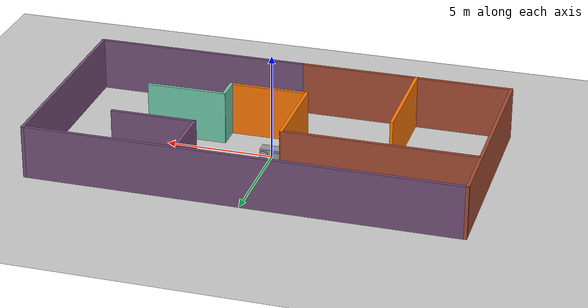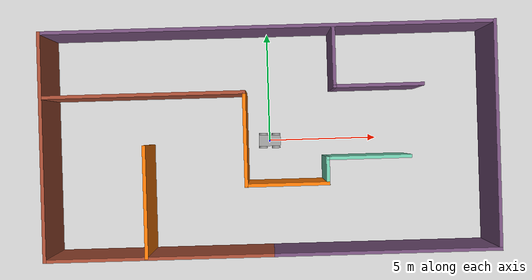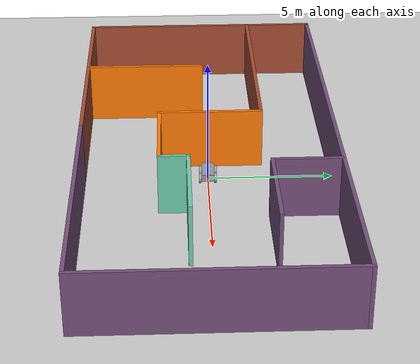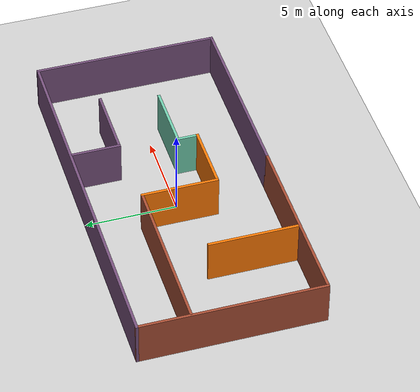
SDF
<sdf version="1.6">
 <world name="default">
  <model name="ground_plane">
   <static>1</static>
   <link name="link">
    <collision name="collision">
     <geometry><plane><normal>0 0 1</normal><size>100 100</size></plane></geometry>
     <surface>
      <contact><collide_bitmask>65535</collide_bitmask></contact>
      <friction><ode><mu>100</mu><mu2>50</mu2></ode></friction>
     </surface>
    </collision>
    <visual name="visual">
     <cast_shadows>0</cast_shadows>
     <geometry><plane><normal>0 0 1</normal><size>100 100</size></plane></geometry>
     <material>
      <script><uri>file://media/materials/scripts/gazebo.material</uri><name>Gazebo/Grey</name></script>
     </material>
    </visual>
   </link>
  </model>
  <model name="RoboModel">
   <link name="link_0">
    <inertial>
     <mass>1</mass>
     <inertia>
      <ixx>0.166667</ixx>
      <ixy>0</ixy>
      <ixz>0</ixz>
      <iyy>0.166667</iyy>
      <iyz>0</iyz>
      <izz>0.166667</izz>
     </inertia>
    </inertial>
    <pose>0 0.001523 -0.04 0 -0 0</pose>
    <visual name="visual">
     <geometry><box><size>1 0.5 0.3</size></box></geometry>
     <material>
      <lighting>1</lighting>
      <script><uri>file://media/materials/scripts/gazebo.material</uri><name>Gazebo/Grey</name></script>
      <shader type="vertex"><normal_map>__default__</normal_map></shader>
      <ambient>0.3 0.3 0.3 1</ambient>
      <diffuse>0.7 0.7 0.7 1</diffuse>
      <specular>0.01 0.01 0.01 1</specular>
      <emissive>0 0 0 1</emissive>
     </material>
    </visual>
    <collision name="collision">
     <geometry><box><size>1 0.5 0.3</size></box></geometry>
     <surface>
      <friction>
       <ode><mu>1</mu><mu2>1</mu2><fdir1>0 0 0</fdir1><slip1>0</slip1><slip2>0</slip2></ode>
       <torsional>
        <coefficient>1</coefficient>
        <patch_radius>0</patch_radius>
        <surface_radius>0</surface_radius>
        <use_patch_radius>1</use_patch_radius>
        <ode><slip>0</slip></ode>
       </torsional>
      </friction>
      <bounce><restitution_coefficient>0</restitution_coefficient><threshold>1e+06</threshold></bounce>
      <contact>
       <collide_without_contact>0</collide_without_contact>
       <collide_without_contact_bitmask>1</collide_without_contact_bitmask>
       <collide_bitmask>1</collide_bitmask>
       <ode>
        <soft_cfm>0</soft_cfm>
        <soft_erp>0.2</soft_erp>
        <kp>1e+13</kp>
        <kd>1</kd>
        <max_vel>0.01</max_vel>
        <min_depth>0</min_depth>
       </ode>
       <bullet>
        <split_impulse>1</split_impulse>
        <split_impulse_penetration_threshold>-0.01</split_impulse_penetration_threshold>
        <soft_cfm>0</soft_cfm>
        <soft_erp>0.2</soft_erp>
        <kp>1e+13</kp>
        <kd>1</kd>
       </bullet>
      </contact>
     </surface>
    </collision>
   </link>
   <link name="link_1_clone_0">
    <inertial>
     <mass>1</mass>
     <inertia><ixx>0.145833</ixx><ixy>0</ixy><ixz>0</ixz><iyy>0.145833</iyy><iyz>0</iyz><izz>0.125</izz></inertia>
    </inertial>
    <pose>0.3 -0.298496 -0.14 1.5707 -0 0</pose>
    <visual name="visual">
     <geometry><cylinder><radius>0.2</radius><length>0.1</length></cylinder></geometry>
     <material>
      <lighting>1</lighting>
      <script><uri>file://media/materials/scripts/gazebo.material</uri><name>Gazebo/Grey</name></script>
      <shader type="vertex"><normal_map>__default__</normal_map></shader>
      <ambient>0.3 0.3 0.3 1</ambient>
      <diffuse>0.7 0.7 0.7 1</diffuse>
      <specular>0.01 0.01 0.01 1</specular>
      <emissive>0 0 0 1</emissive>
     </material>
    </visual>
    <collision name="collision">
     <geometry><cylinder><radius>0.2</radius><length>0.1</length></cylinder></geometry>
     <surface>
      <friction>
       <ode><mu>1</mu><mu2>1</mu2><fdir1>0 0 0</fdir1><slip1>0</slip1><slip2>0</slip2></ode>
       <torsional>
        <coefficient>1</coefficient>
        <patch_radius>0</patch_radius>
        <surface_radius>0</surface_radius>
        <use_patch_radius>1</use_patch_radius>
        <ode><slip>0</slip></ode>
       </torsional>
      </friction>
      <bounce><restitution_coefficient>0</restitution_coefficient><threshold>1e+06</threshold></bounce>
      <contact>
       <collide_without_contact>0</collide_without_contact>
       <collide_without_contact_bitmask>1</collide_without_contact_bitmask>
       <collide_bitmask>1</collide_bitmask>
       <ode>
        <soft_cfm>0</soft_cfm>
        <soft_erp>0.2</soft_erp>
        <kp>1e+13</kp>
        <kd>1</kd>
        <max_vel>0.01</max_vel>
        <min_depth>0</min_depth>
       </ode>
       <bullet>
        <split_impulse>1</split_impulse>
        <split_impulse_penetration_threshold>-0.01</split_impulse_penetration_threshold>
        <soft_cfm>0</soft_cfm>
        <soft_erp>0.2</soft_erp>
        <kp>1e+13</kp>
        <kd>1</kd>
       </bullet>
      </contact>
     </surface>
    </collision>
   </link>
   <link name="link_1_clone_1">
    <inertial>
     <mass>1</mass>
     <inertia><ixx>0.145833</ixx><ixy>0</ixy><ixz>0</ixz><iyy>0.145833</iyy><iyz>0</iyz><izz>0.125</izz></inertia>
    </inertial>
    <pose>-0.3 -0.298496 -0.14 1.5707 -0 0</pose>
    <visual name="visual">
     <geometry><cylinder><radius>0.2</radius><length>0.1</length></cylinder></geometry>
     <material>
      <lighting>1</lighting>
      <script><uri>file://media/materials/scripts/gazebo.material</uri><name>Gazebo/Grey</name></script>
      <shader type="vertex"><normal_map>__default__</normal_map></shader>
      <ambient>0.3 0.3 0.3 1</ambient>
      <diffuse>0.7 0.7 0.7 1</diffuse>
      <specular>0.01 0.01 0.01 1</specular>
      <emissive>0 0 0 1</emissive>
     </material>
    </visual>
    <collision name="collision">
     <geometry><cylinder><radius>0.2</radius><length>0.1</length></cylinder></geometry>
     <surface>
      <friction>
       <ode><mu>1</mu><mu2>1</mu2><fdir1>0 0 0</fdir1><slip1>0</slip1><slip2>0</slip2></ode>
       <torsional>
        <coefficient>1</coefficient>
        <patch_radius>0</patch_radius>
        <surface_radius>0</surface_radius>
        <use_patch_radius>1</use_patch_radius>
        <ode><slip>0</slip></ode>
       </torsional>
      </friction>
      <bounce><restitution_coefficient>0</restitution_coefficient><threshold>1e+06</threshold></bounce>
      <contact>
       <collide_without_contact>0</collide_without_contact>
       <collide_without_contact_bitmask>1</collide_without_contact_bitmask>
       <collide_bitmask>1</collide_bitmask>
       <ode>
        <soft_cfm>0</soft_cfm>
        <soft_erp>0.2</soft_erp>
        <kp>1e+13</kp>
        <kd>1</kd>
        <max_vel>0.01</max_vel>
        <min_depth>0</min_depth>
       </ode>
       <bullet>
        <split_impulse>1</split_impulse>
        <split_impulse_penetration_threshold>-0.01</split_impulse_penetration_threshold>
        <soft_cfm>0</soft_cfm>
        <soft_erp>0.2</soft_erp>
        <kp>1e+13</kp>
        <kd>1</kd>
       </bullet>
      </contact>
     </surface>
    </collision>
   </link>
   <link name="link_1_clone_1_clone">
    <inertial>
     <mass>1</mass>
     <inertia><ixx>0.145833</ixx><ixy>0</ixy><ixz>0</ixz><iyy>0.145833</iyy><iyz>0</iyz><izz>0.125</izz></inertia>
    </inertial>
    <pose>0.3 0.293927 -0.14 1.5707 -0 0</pose>
    <visual name="visual">
     <geometry><cylinder><radius>0.2</radius><length>0.1</length></cylinder></geometry>
     <material>
      <lighting>1</lighting>
      <script><uri>file://media/materials/scripts/gazebo.material</uri><name>Gazebo/Grey</name></script>
      <shader type="vertex"><normal_map>__default__</normal_map></shader>
      <ambient>0.3 0.3 0.3 1</ambient>
      <diffuse>0.7 0.7 0.7 1</diffuse>
      <specular>0.01 0.01 0.01 1</specular>
      <emissive>0 0 0 1</emissive>
     </material>
    </visual>
    <collision name="collision">
     <geometry><cylinder><radius>0.2</radius><length>0.1</length></cylinder></geometry>
     <surface>
      <friction>
       <ode><mu>1</mu><mu2>1</mu2><fdir1>0 0 0</fdir1><slip1>0</slip1><slip2>0</slip2></ode>
       <torsional>
        <coefficient>1</coefficient>
        <patch_radius>0</patch_radius>
        <surface_radius>0</surface_radius>
        <use_patch_radius>1</use_patch_radius>
        <ode><slip>0</slip></ode>
       </torsional>
      </friction>
      <bounce><restitution_coefficient>0</restitution_coefficient><threshold>1e+06</threshold></bounce>
      <contact>
       <collide_without_contact>0</collide_without_contact>
       <collide_without_contact_bitmask>1</collide_without_contact_bitmask>
       <collide_bitmask>1</collide_bitmask>
       <ode>
        <soft_cfm>0</soft_cfm>
        <soft_erp>0.2</soft_erp>
        <kp>1e+13</kp>
        <kd>1</kd>
        <max_vel>0.01</max_vel>
        <min_depth>0</min_depth>
       </ode>
       <bullet>
        <split_impulse>1</split_impulse>
        <split_impulse_penetration_threshold>-0.01</split_impulse_penetration_threshold>
        <soft_cfm>0</soft_cfm>
        <soft_erp>0.2</soft_erp>
        <kp>1e+13</kp>
        <kd>1</kd>
       </bullet>
      </contact>
     </surface>
    </collision>
   </link>
   <link name="link_1_clone_1_clone_0">
    <inertial>
     <mass>1</mass>
     <inertia><ixx>0.145833</ixx><ixy>0</ixy><ixz>0</ixz><iyy>0.145833</iyy><iyz>0</iyz><izz>0.125</izz></inertia>
    </inertial>
    <pose>-0.3 0.301542 -0.14 1.5707 -0 0</pose>
    <visual name="visual">
     <geometry><cylinder><radius>0.2</radius><length>0.1</length></cylinder></geometry>
     <material>
      <lighting>1</lighting>
      <script><uri>file://media/materials/scripts/gazebo.material</uri><name>Gazebo/Grey</name></script>
      <shader type="vertex"><normal_map>__default__</normal_map></shader>
      <ambient>0.3 0.3 0.3 1</ambient>
      <diffuse>0.7 0.7 0.7 1</diffuse>
      <specular>0.01 0.01 0.01 1</specular>
      <emissive>0 0 0 1</emissive>
     </material>
    </visual>
    <collision name="collision">
     <geometry><cylinder><radius>0.2</radius><length>0.1</length></cylinder></geometry>
     <surface>
      <friction>
       <ode><mu>1</mu><mu2>1</mu2><fdir1>0 0 0</fdir1><slip1>0</slip1><slip2>0</slip2></ode>
       <torsional>
        <coefficient>1</coefficient>
        <patch_radius>0</patch_radius>
        <surface_radius>0</surface_radius>
        <use_patch_radius>1</use_patch_radius>
        <ode><slip>0</slip></ode>
       </torsional>
      </friction>
      <bounce><restitution_coefficient>0</restitution_coefficient><threshold>1e+06</threshold></bounce>
      <contact>
       <collide_without_contact>0</collide_without_contact>
       <collide_without_contact_bitmask>1</collide_without_contact_bitmask>
       <collide_bitmask>1</collide_bitmask>
       <ode>
        <soft_cfm>0</soft_cfm>
        <soft_erp>0.2</soft_erp>
        <kp>1e+13</kp>
        <kd>1</kd>
        <max_vel>0.01</max_vel>
        <min_depth>0</min_depth>
       </ode>
       <bullet>
        <split_impulse>1</split_impulse>
        <split_impulse_penetration_threshold>-0.01</split_impulse_penetration_threshold>
        <soft_cfm>0</soft_cfm>
        <soft_erp>0.2</soft_erp>
        <kp>1e+13</kp>
        <kd>1</kd>
       </bullet>
      </contact>
     </surface>
    </collision>
   </link>
   <joint name="link_0_JOINT_1" type="revolute">
    <parent>link_0</parent>
    <child>link_1_clone_0</child>
    <axis>
     <xyz>0 0 1</xyz>
     <use_parent_model_frame>0</use_parent_model_frame>
     <limit>
      <lower>-1.79769e+308</lower>
      <upper>1.79769e+308</upper>
      <effort>-1</effort>
      <velocity>-1</velocity>
     </limit>
     <dynamics>
      <spring_reference>0</spring_reference>
      <spring_stiffness>0</spring_stiffness>
      <damping>0</damping>
     </dynamics>
    </axis>
    <physics>
     <ode><limit><cfm>0</cfm><erp>0.2</erp></limit><suspension><cfm>0</cfm><erp>0.2</erp></suspension></ode>
    </physics>
   </joint>
   <joint name="link_0_JOINT_4" type="revolute">
    <parent>link_0</parent>
    <child>link_1_clone_1</child>
    <axis>
     <xyz>0 0 1</xyz>
     <use_parent_model_frame>0</use_parent_model_frame>
     <limit>
      <lower>-1.79769e+308</lower>
      <upper>1.79769e+308</upper>
      <effort>-1</effort>
      <velocity>-1</velocity>
     </limit>
     <dynamics>
      <spring_reference>0</spring_reference>
      <spring_stiffness>0</spring_stiffness>
      <damping>0</damping>
     </dynamics>
    </axis>
    <physics>
     <ode><limit><cfm>0</cfm><erp>0.2</erp></limit><suspension><cfm>0</cfm><erp>0.2</erp></suspension></ode>
    </physics>
   </joint>
   <joint name="link_0_JOINT_5" type="revolute">
    <parent>link_0</parent>
    <child>link_1_clone_1_clone</child>
    <axis>
     <xyz>0 0 1</xyz>
     <use_parent_model_frame>0</use_parent_model_frame>
     <limit>
      <lower>-1.79769e+308</lower>
      <upper>1.79769e+308</upper>
      <effort>-1</effort>
      <velocity>-1</velocity>
     </limit>
     <dynamics>
      <spring_reference>0</spring_reference>
      <spring_stiffness>0</spring_stiffness>
      <damping>0</damping>
     </dynamics>
    </axis>
    <physics>
     <ode><limit><cfm>0</cfm><erp>0.2</erp></limit><suspension><cfm>0</cfm><erp>0.2</erp></suspension></ode>
    </physics>
   </joint>
   <joint name="link_0_JOINT_6" type="revolute">
    <parent>link_0</parent>
    <child>link_1_clone_1_clone_0</child>
    <axis>
     <xyz>0 0 1</xyz>
     <use_parent_model_frame>0</use_parent_model_frame>
     <limit>
      <lower>-1.79769e+308</lower>
      <upper>1.79769e+308</upper>
      <effort>-1</effort>
      <velocity>-1</velocity>
     </limit>
     <dynamics>
      <spring_reference>0</spring_reference>
      <spring_stiffness>0</spring_stiffness>
      <damping>0</damping>
     </dynamics>
    </axis>
    <physics>
     <ode><limit><cfm>0</cfm><erp>0.2</erp></limit><suspension><cfm>0</cfm><erp>0.2</erp></suspension></ode>
    </physics>
   </joint>
   <static>0</static>
   <pose>0.004395 -0.004647 0.340005 1e-06 -0 -0.019747</pose>
  </model>
  <model name="Environment">
   <link name="Wall_10">
    <collision name="Wall_10_Collision">
     <geometry><box><size>4.25 0.15 2.5</size></box></geometry>
     <pose>0 0 1.25 0 -0 0</pose>
    </collision>
    <visual name="Wall_10_Visual">
     <pose>0 0 1.25 0 -0 0</pose>
     <geometry><box><size>4.25 0.15 2.5</size></box></geometry>
     <material>
      <script><uri>file://media/materials/scripts/gazebo.material</uri><name>Gazebo/Grey</name></script>
      <ambient>0.996078 0.47451 0.0196078 1</ambient>
     </material>
     <meta><layer>0</layer></meta>
    </visual>
    <pose>-1.07623 0.124176 0 0 -0 -1.5708</pose>
   </link>
   <link name="Wall_11">
    <collision name="Wall_11_Collision">
     <geometry><box><size>3.75 0.15 2.5</size></box></geometry>
     <pose>0 0 1.25 0 -0 0</pose>
    </collision>
    <visual name="Wall_11_Visual">
     <pose>0 0 1.25 0 -0 0</pose>
     <geometry><box><size>3.75 0.15 2.5</size></box></geometry>
     <material>
      <script><uri>file://media/materials/scripts/gazebo.material</uri><name>Gazebo/Grey</name></script>
      <ambient>0.996078 0.47451 0.0196078 1</ambient>
     </material>
     <meta><layer>0</layer></meta>
    </visual>
    <pose>0.723769 -1.92582 0 0 -0 0</pose>
   </link>
   <link name="Wall_12">
    <collision name="Wall_12_Collision">
     <geometry><box><size>1.25 0.15 2.5</size></box></geometry>
     <pose>0 0 1.25 0 -0 0</pose>
    </collision>
    <visual name="Wall_12_Visual">
     <pose>0 0 1.25 0 -0 0</pose>
     <geometry><box><size>1.25 0.15 2.5</size></box></geometry>
     <material>
      <script><uri>file://media/materials/scripts/gazebo.material</uri><name>Gazebo/Grey</name></script>
      <ambient>0.435294 0.796078 0.67451 1</ambient>
     </material>
     <meta><layer>0</layer></meta>
    </visual>
    <pose>2.52377 -1.37582 0 0 -0 1.5708</pose>
   </link>
   <link name="Wall_13">
    <collision name="Wall_13_Collision">
     <geometry><box><size>3.75 0.15 2.5</size></box></geometry>
     <pose>0 0 1.25 0 -0 0</pose>
    </collision>
    <visual name="Wall_13_Visual">
     <pose>0 0 1.25 0 -0 0</pose>
     <geometry><box><size>3.75 0.15 2.5</size></box></geometry>
     <material>
      <script><uri>file://media/materials/scripts/gazebo.material</uri><name>Gazebo/Grey</name></script>
      <ambient>0.435294 0.796078 0.67451 1</ambient>
     </material>
     <meta><layer>0</layer></meta>
    </visual>
    <pose>4.32377 -0.825824 0 0 -0 0</pose>
   </link>
   <link name="Wall_15">
    <collision name="Wall_15_Collision">
     <geometry><box><size>2.75 0.15 2.5</size></box></geometry>
     <pose>0 0 1.25 0 -0 0</pose>
    </collision>
    <visual name="Wall_15_Visual">
     <pose>0 0 1.25 0 -0 0</pose>
     <geometry><box><size>2.75 0.15 2.5</size></box></geometry>
     <material>
      <script><uri>file://media/materials/scripts/gazebo.material</uri><name>Gazebo/Grey</name></script>
      <ambient>0.458824 0.313726 0.482353 1</ambient>
     </material>
     <meta><layer>0</layer></meta>
    </visual>
    <pose>2.91402 3.61812 0 0 -0 -1.5708</pose>
   </link>
   <link name="Wall_16">
    <collision name="Wall_16_Collision">
     <geometry><box><size>4 0.15 2.5</size></box></geometry>
     <pose>0 0 1.25 0 -0 0</pose>
    </collision>
    <visual name="Wall_16_Visual">
     <pose>0 0 1.25 0 -0 0</pose>
     <geometry><box><size>4 0.15 2.5</size></box></geometry>
     <material>
      <script><uri>file://media/materials/scripts/gazebo.material</uri><name>Gazebo/Grey</name></script>
      <ambient>0.458824 0.313726 0.482353 1</ambient>
     </material>
     <meta><layer>0</layer></meta>
    </visual>
    <pose>4.83902 2.31812 0 0 -0 0</pose>
   </link>
   <link name="Wall_18">
    <collision name="Wall_18_Collision">
     <geometry><box><size>5 0.15 2.5</size></box></geometry>
     <pose>0 0 1.25 0 -0 0</pose>
    </collision>
    <visual name="Wall_18_Visual">
     <pose>0 0 1.25 0 -0 0</pose>
     <geometry><box><size>5 0.15 2.5</size></box></geometry>
     <material>
      <script><uri>file://media/materials/scripts/gazebo.material</uri><name>Gazebo/Grey</name></script>
      <ambient>0.996078 0.47451 0.0196078 1</ambient>
     </material>
     <meta><layer>0</layer></meta>
    </visual>
    <pose>-5.52889 -2.53744 0 0 -0 -1.5708</pose>
   </link>
   <link name="Wall_2">
    <collision name="Wall_2_Collision">
     <geometry><box><size>10.1501 0.15 2.5</size></box></geometry>
     <pose>0 0 1.25 0 -0 0</pose>
    </collision>
    <visual name="Wall_2_Visual">
     <pose>0 0 1.25 0 -0 0</pose>
     <geometry><box><size>10.1501 0.15 2.5</size></box></geometry>
     <material>
      <script><uri>file://media/materials/scripts/gazebo.material</uri><name>Gazebo/Bricks</name></script>
      <ambient>1 1 1 1</ambient>
     </material>
     <meta><layer>0</layer></meta>
    </visual>
    <pose>-10 0 0 0 -0 -1.5708</pose>
   </link>
   <link name="Wall_3">
    <collision name="Wall_3_Collision">
     <geometry><box><size>10.15 0.15 2.5</size></box></geometry>
     <pose>0 0 1.25 0 -0 0</pose>
    </collision>
    <visual name="Wall_3_Visual">
     <pose>0 0 1.25 0 -0 0</pose>
     <geometry><box><size>10.15 0.15 2.5</size></box></geometry>
     <material>
      <script><uri>file://media/materials/scripts/gazebo.material</uri><name>Gazebo/Bricks</name></script>
      <ambient>1 1 1 1</ambient>
     </material>
     <meta><layer>0</layer></meta>
    </visual>
    <pose>-5 -5 0 0 -0 0</pose>
   </link>
   <link name="Wall_4">
    <collision name="Wall_4_Collision">
     <geometry><box><size>10.15 0.15 2.5</size></box></geometry>
     <pose>0 0 1.25 0 -0 0</pose>
    </collision>
    <visual name="Wall_4_Visual">
     <pose>0 0 1.25 0 -0 0</pose>
     <geometry><box><size>10.15 0.15 2.5</size></box></geometry>
     <material>
      <script><uri>file://media/materials/scripts/gazebo.material</uri><name>Gazebo/Grey</name></script>
      <ambient>0.458824 0.313726 0.482353 1</ambient>
     </material>
     <meta><layer>0</layer></meta>
    </visual>
    <pose>5 -5 0 0 -0 0</pose>
   </link>
   <link name="Wall_5">
    <collision name="Wall_5_Collision">
     <geometry><box><size>10.15 0.15 2.5</size></box></geometry>
     <pose>0 0 1.25 0 -0 0</pose>
    </collision>
    <visual name="Wall_5_Visual">
     <pose>0 0 1.25 0 -0 0</pose>
     <geometry><box><size>10.15 0.15 2.5</size></box></geometry>
     <material>
      <script><uri>file://media/materials/scripts/gazebo.material</uri><name>Gazebo/Grey</name></script>
      <ambient>0.458824 0.313726 0.482353 1</ambient>
     </material>
     <meta><layer>0</layer></meta>
    </visual>
    <pose>10 0 0 0 -0 1.5708</pose>
   </link>
   <link name="Wall_6">
    <collision name="Wall_6_Collision">
     <geometry><box><size>20.15 0.15 2.5</size></box></geometry>
     <pose>0 0 1.25 0 -0 0</pose>
    </collision>
    <visual name="Wall_6_Visual">
     <pose>0 0 1.25 0 -0 0</pose>
     <geometry><box><size>20.15 0.15 2.5</size></box></geometry>
     <material>
      <script><uri>file://media/materials/scripts/gazebo.material</uri><name>Gazebo/Grey</name></script>
      <ambient>0.458824 0.313726 0.482353 1</ambient>
     </material>
     <meta><layer>0</layer></meta>
    </visual>
    <pose>0 5 0 0 -0 3.14159</pose>
   </link>
   <link name="Wall_9">
    <collision name="Wall_9_Collision">
     <geometry><box><size>9 0.15 2.5</size></box></geometry>
     <pose>0 0 1.25 0 -0 0</pose>
    </collision>
    <visual name="Wall_9_Visual">
     <pose>0 0 1.25 0 -0 0</pose>
     <geometry><box><size>9 0.15 2.5</size></box></geometry>
     <material>
      <script><uri>file://media/materials/scripts/gazebo.material</uri><name>Gazebo/Bricks</name></script>
      <ambient>1 1 1 1</ambient>
     </material>
     <meta><layer>0</layer></meta>
    </visual>
    <pose>-5.50123 2.17418 0 0 -0 0</pose>
   </link>
   <static>1</static>
  </model>
 </world>
</sdf>
